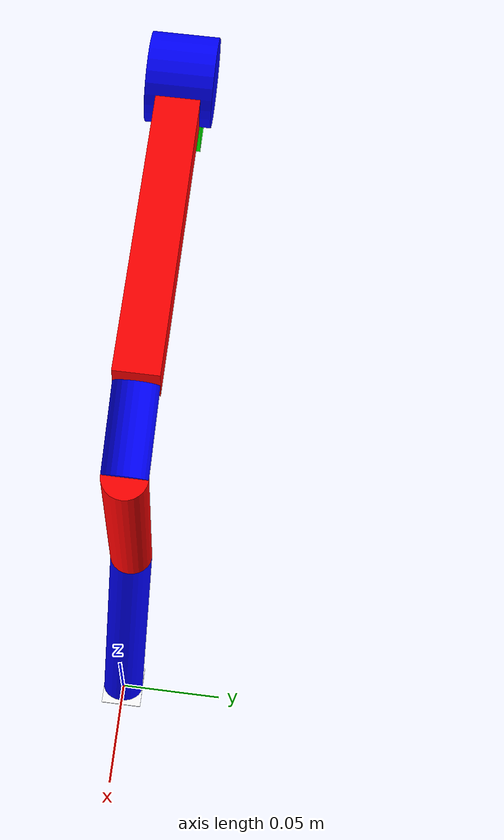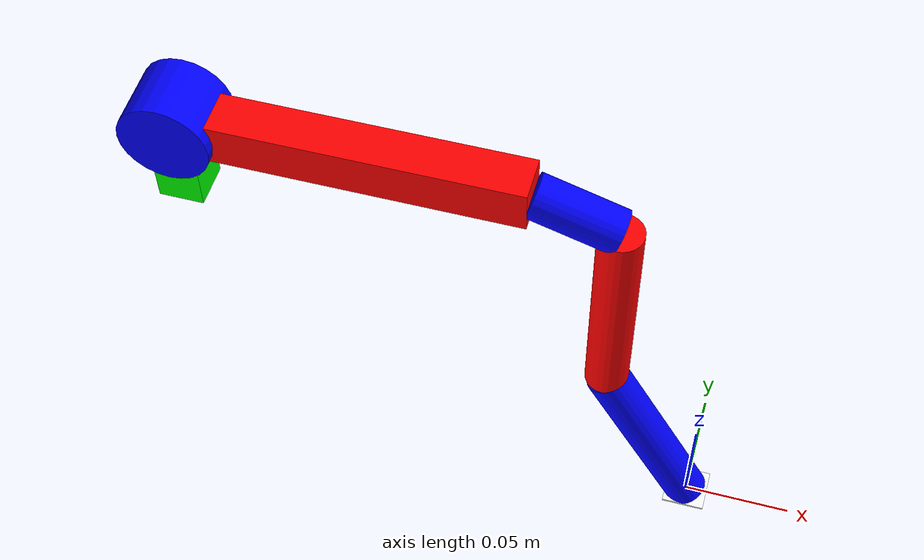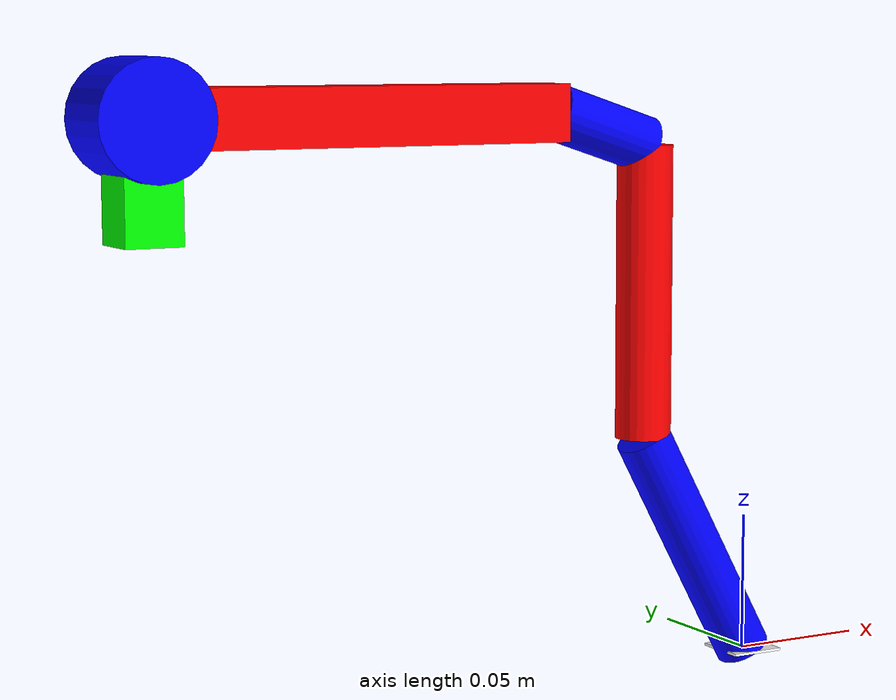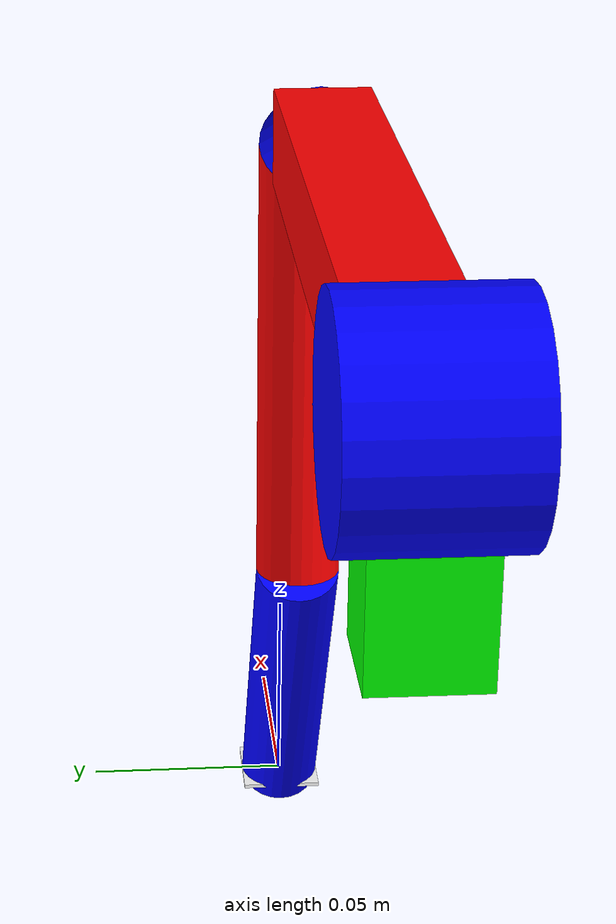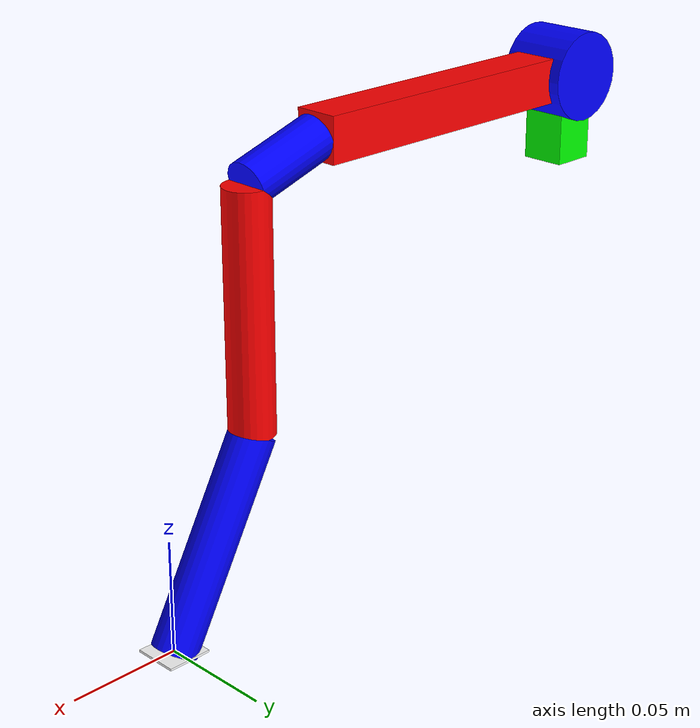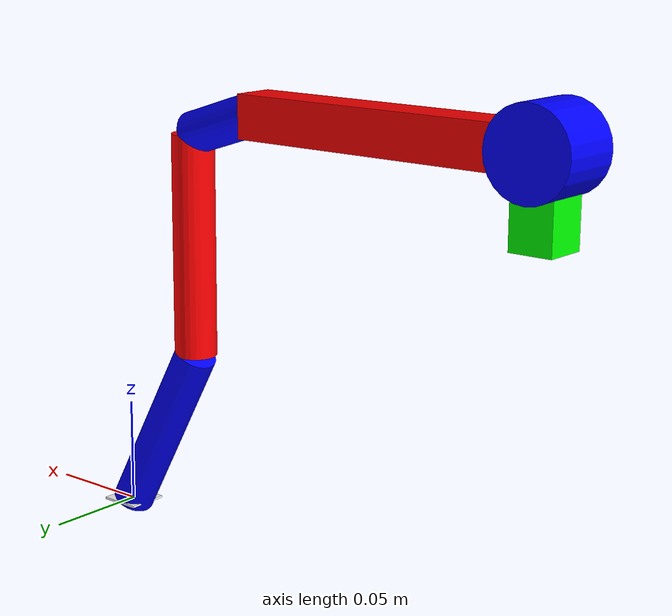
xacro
<?xml version="1.0"?>
<robot name="macroed" xmlns:xacro="http://ros.org/wiki/xacro">
   <!-- Defining the colors used in this robot -->
    <material name="Black">
        <color rgba="0 0 0 1"/>
    </material>

    <material name="White">
        <color rgba="1 1 1 1"/>
    </material>

    <material name="Blue">
        <color rgba="0 0 1 1"/>
    </material>

    <material name="Red">
        <color rgba="1 0 0 1"/>
    </material>

    <material name="Green">
        <color rgba="0 1 0 1"/>
    </material>

    <!-- Constants -->

    <xacro:property name="ToRad" value="0.01745327777"/>
    <xacro:property name="X_Offset_1" value="-0.0225"/>
    <xacro:property name="Z_Offset_1" value="0.13397459622"/>

    <!-- link1 properties -->
    <xacro:property name="link1_width" value="0.01" />
    <xacro:property name="link1_len" value="0.094414" />
    <xacro:property name="link1_len_pj" value="0.083" />
    <!-- link2 properties -->
    <xacro:property name="link2_width" value="0.01" />
    <xacro:property name="link2_len" value="0.105" />

    <!-- link3 properties -->
    <xacro:property name="link3_width" value="0.01" />
    <xacro:property name="link3_len" value="0.0388973006776" />

    <!-- link4 properties -->
    <xacro:property name="link4_width" value="0.02" />
    <xacro:property name="link4_len" value="0.1525" />

    <!-- link5 properties -->
    <xacro:property name="link5_width" value="0.02" />
    <xacro:property name="link5_len" value="0.03" />

    <!-- link6 properties -->
    <xacro:property name="link6_width" value="0.02" />
    <xacro:property name="link6_len" value="0.04" />

    <!-- Inertial matrix -->
    <xacro:macro name="inertial_matrix" params="mass">
        <inertial>
            <mass value="${mass}" />
            <inertia ixx="1.0" ixy="0.0" ixz="0.0" iyy="0.5" iyz="0.0" izz="1.0" />
        </inertial>
    </xacro:macro>

    <!-- /////////////////////////////////////   BASE LINK    ////////////////////////////////////////////// -->
    <link name="base_link">
        <visual>
            <origin xyz="0 0 0" rpy="0 0 0" />
            <geometry>
                <box size="0.02 0.02 0.001" />
            </geometry>
            <material name="White" />
        </visual>
    </link>

    <joint name="joint1" type="revolute">
        <parent link="base_link"/>
        <child link="link1"/>
        <origin xyz="0 0 0" rpy="0 0 0" />
        <axis xyz="0 0 1" />
        <limit effort="300" velocity="1" lower="-2.96" upper="2.96"/>
        <dynamics damping="50" friction="1"/>
    </joint>

    <!-- /////////////////////////////////////   LINK1  ////////////////////////////////////////////// -->
    <link name="link1" >
        <visual>
            <origin xyz="${X_Offset_1} 0 ${link1_len_pj/2} " rpy="0 -${28.465*ToRad} 0" />
            <geometry>
                <cylinder radius="${link1_width}" length="${link1_len}"/>
            </geometry>
            <material name="Blue" />
        </visual>

        <xacro:inertial_matrix mass="1"/>
    </link>

    <joint name="joint2" type="revolute">
        <parent link="link1"/>
        <child link="link2"/>
        <origin xyz="${X_Offset_1*2} 0 ${link1_len_pj}" rpy="0 0 0" />
        <axis xyz="0 1 0" />
        <limit effort="300" velocity="1" lower="-2.96" upper="2.96"/>
        <dynamics damping="50" friction="1"/>
    </joint>

    <!-- /////////////////////////////////////   LINK2  ////////////////////////////////////////////// -->
    <link name="link2" >
        <visual>
            <origin xyz="0 0 ${ link2_len/2}" rpy="0 0 0" />
            <geometry>
                <cylinder radius="${link2_width}" length="${link2_len}"/>
            </geometry>
            <material name="Red" />
        </visual>

        <xacro:inertial_matrix mass="1"/>
    </link>
    <joint name="joint3" type="revolute">
        <parent link="link2"/>
        <child link="link3"/>
        <origin xyz="0 0  ${link2_len}" rpy="0 0 0" />
        <axis xyz="0 1 0" />
        <limit effort="300" velocity="1" lower="-2.96" upper="2.96"/>
        <dynamics damping="50" friction="1"/>
    </joint>

    <!-- /////////////////////////////////////   LINK3  ////////////////////////////////////////////// -->
    <link name="link3" >
        <visual>
            <origin xyz="-0.0185 0 0.006" rpy="0 -${72.031*ToRad} 0" />
            <geometry>
                <cylinder radius="${link3_width}" length="${link3_len}"/>
            </geometry>
            <material name="Blue" />
        </visual>

        <xacro:inertial_matrix mass="1"/>
    </link>
    <joint name="joint4" type="revolute">
        <parent link="link3"/>
        <child link="link4"/>
        <origin xyz="-0.037 0 0.012" rpy="0 0 0" />
        <axis xyz="1 0 0" />
        <limit effort="300" velocity="1" lower="-2.96" upper="2.96"/>
        <dynamics damping="50" friction="1"/>
    </joint>

    <!-- /////////////////////////////////////   LINK4  ////////////////////////////////////////////// -->
    <link name="link4" >
        <visual>
            <origin xyz="-${link4_len/2} 0 0" rpy="0 0 0" />
            <geometry>
                <box size="${link4_len} ${link4_width} ${link4_width}"/>
            </geometry>
            <material name="Red" />
        </visual>

        <xacro:inertial_matrix mass="1"/>
    </link>
    <joint name="joint5" type="revolute">
        <parent link="link4"/>
        <child link="link5"/>
        <origin xyz="-${link4_len} 0 0" rpy="0 0 0" />
        <axis xyz="0 1 0" />
        <limit effort="300" velocity="1" lower="-2.96" upper="2.96"/>
        <dynamics damping="50" friction="1"/>
    </joint>

    <!-- /////////////////////////////////////   LINK5  ////////////////////////////////////////////// -->
    <link name="link5" >
        <visual>
            <origin xyz="0 0 0" rpy="${90*ToRad} 0 0" />
            <geometry>
                <cylinder radius="${link5_width}" length="${link5_len}"/>
            </geometry>
            <material name="Blue" />
        </visual>

        <xacro:inertial_matrix mass="1"/>
    </link>
    <joint name="joint6" type="revolute">
        <parent link="link5"/>
        <child link="link6"/>
        <origin xyz="0 0 0" rpy="0 0 0" />
        <axis xyz="0 0 1" />
        <limit effort="300" velocity="1" lower="-2.96" upper="2.96"/>
        <dynamics damping="50" friction="1"/>
    </joint>

    <!-- /////////////////////////////////////   LINK6  ////////////////////////////////////////////// -->
    <link name="link6" >
        <visual>
            <origin xyz="0 0 -${link6_len/2}" rpy="0 ${90*ToRad} 0" />
            <geometry>
                <box size="${link6_len} ${link6_width} ${link6_width}"/>
            </geometry>
            <material name="Green" />
        </visual>

        <xacro:inertial_matrix mass="1"/>
    </link>

</robot>
